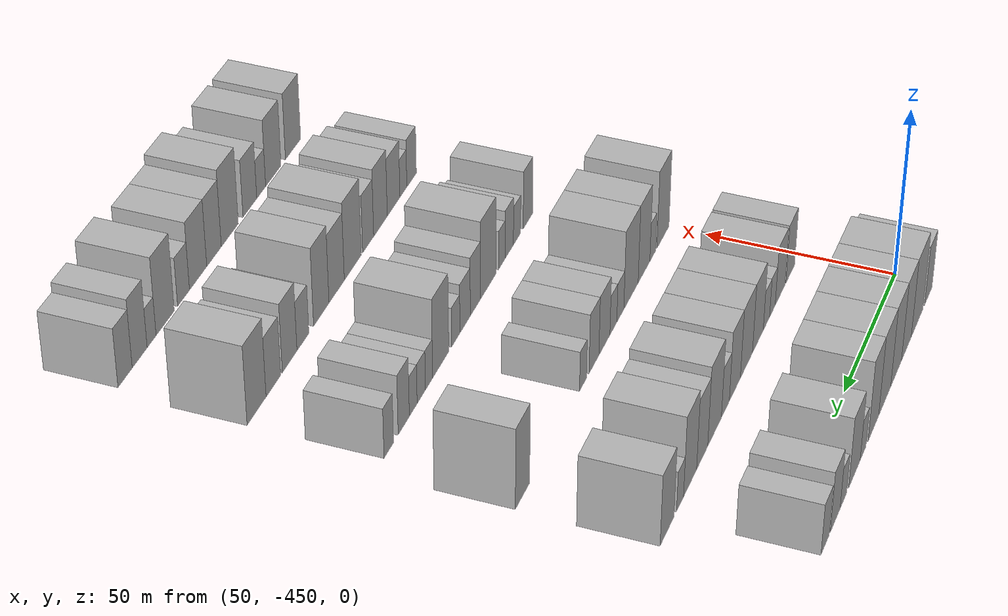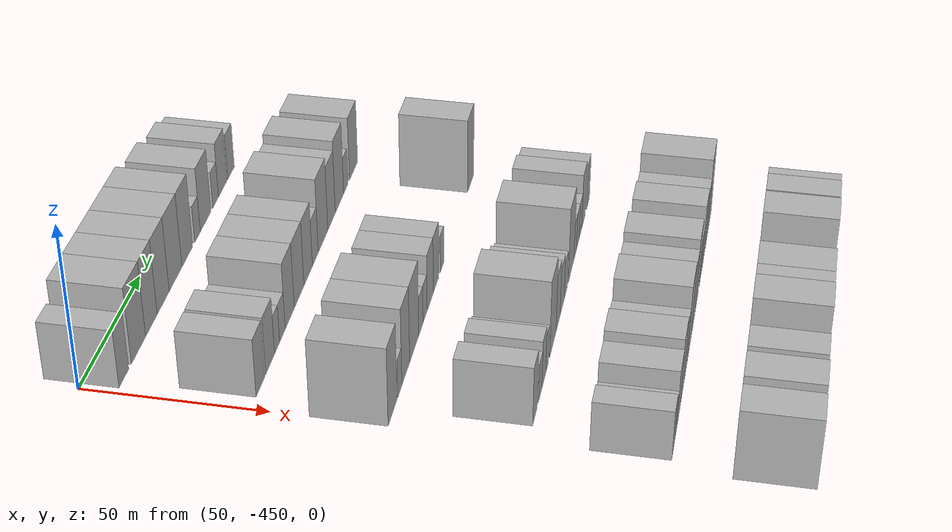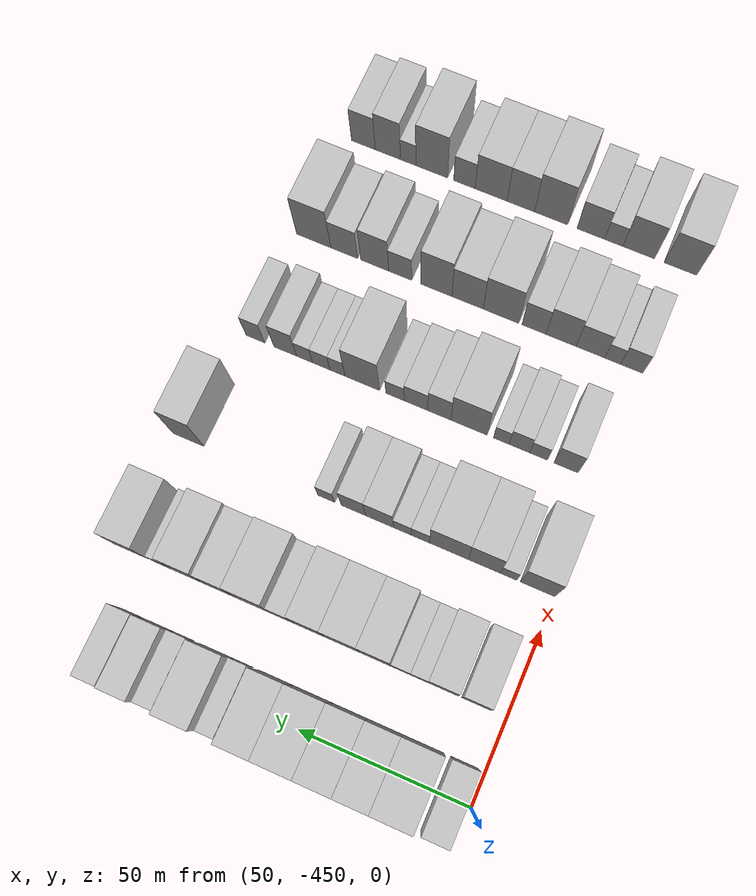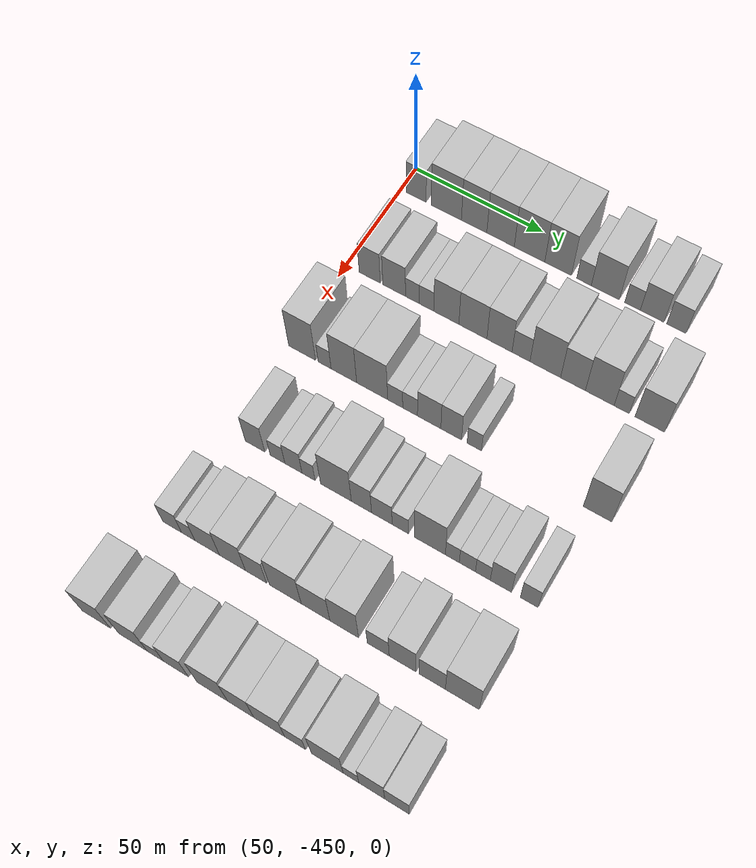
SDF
<sdf version="1.6">
 <world name="default">
  <model name="building_14">
   <static>1</static>
   <pose>50.0000 -443.8816 0 0.000000 0.000000 0.000000</pose>
   <link name="link">
    <pose>0 0 9.00 0 0 0</pose>
    <collision name="collision"><geometry><box><size>20.0000 7.8387 18.0000</size></box></geometry></collision>
    <visual name="visual">
     <cast_shadows>0</cast_shadows>
     <geometry><box><size>20.0000 7.8387 18.0000</size></box></geometry>
     <material>
      <script>
       <uri>model://HANNAS_wall/materials/scripts</uri>
       <uri>model://HANNAS_wall/materials/textures</uri>
       <name>vrc/HANNAS_wall</name>
      </script>
     </material>
    </visual>
   </link>
  </model>
  <model name="building_15">
   <static>1</static>
   <pose>50.0000 -432.0158 0 0.000000 0.000000 0.000000</pose>
   <link name="link">
    <pose>0 0 12.00 0 0 0</pose>
    <collision name="collision"><geometry><box><size>20.0000 11.8929 24.0000</size></box></geometry></collision>
    <visual name="visual">
     <cast_shadows>0</cast_shadows>
     <geometry><box><size>20.0000 11.8929 24.0000</size></box></geometry>
     <material>
      <script>
       <uri>model://HANNAS_wall/materials/scripts</uri>
       <uri>model://HANNAS_wall/materials/textures</uri>
       <name>vrc/HANNAS_wall</name>
      </script>
     </material>
    </visual>
   </link>
  </model>
  <model name="building_16">
   <static>1</static>
   <pose>50.0000 -421.1257 0 0.000000 0.000000 0.000000</pose>
   <link name="link">
    <pose>0 0 12.00 0 0 0</pose>
    <collision name="collision"><geometry><box><size>20.0000 9.8872 24.0000</size></box></geometry></collision>
    <visual name="visual">
     <cast_shadows>0</cast_shadows>
     <geometry><box><size>20.0000 9.8872 24.0000</size></box></geometry>
     <material>
      <script>
       <uri>model://HANNAS_wall/materials/scripts</uri>
       <uri>model://HANNAS_wall/materials/textures</uri>
       <name>vrc/HANNAS_wall</name>
      </script>
     </material>
    </visual>
   </link>
  </model>
  <model name="building_17">
   <static>1</static>
   <pose>50.0000 -410.8845 0 0.000000 0.000000 0.000000</pose>
   <link name="link">
    <pose>0 0 12.00 0 0 0</pose>
    <collision name="collision"><geometry><box><size>20.0000 10.5951 24.0000</size></box></geometry></collision>
    <visual name="visual">
     <cast_shadows>0</cast_shadows>
     <geometry><box><size>20.0000 10.5951 24.0000</size></box></geometry>
     <material>
      <script>
       <uri>model://HANNAS_wall/materials/scripts</uri>
       <uri>model://HANNAS_wall/materials/textures</uri>
       <name>vrc/HANNAS_wall</name>
      </script>
     </material>
    </visual>
   </link>
  </model>
  <model name="building_18">
   <static>1</static>
   <pose>50.0000 -399.7800 0 0.000000 0.000000 0.000000</pose>
   <link name="link">
    <pose>0 0 12.00 0 0 0</pose>
    <collision name="collision"><geometry><box><size>20.0000 11.6139 24.0000</size></box></geometry></collision>
    <visual name="visual">
     <cast_shadows>0</cast_shadows>
     <geometry><box><size>20.0000 11.6139 24.0000</size></box></geometry>
     <material>
      <script>
       <uri>model://HANNAS_wall/materials/scripts</uri>
       <uri>model://HANNAS_wall/materials/textures</uri>
       <name>vrc/HANNAS_wall</name>
      </script>
     </material>
    </visual>
   </link>
  </model>
  <model name="building_19">
   <static>1</static>
   <pose>50.0000 -388.9521 0 0.000000 0.000000 0.000000</pose>
   <link name="link">
    <pose>0 0 12.00 0 0 0</pose>
    <collision name="collision"><geometry><box><size>20.0000 10.0421 24.0000</size></box></geometry></collision>
    <visual name="visual">
     <cast_shadows>0</cast_shadows>
     <geometry><box><size>20.0000 10.0421 24.0000</size></box></geometry>
     <material>
      <script>
       <uri>model://HANNAS_wall/materials/scripts</uri>
       <uri>model://HANNAS_wall/materials/textures</uri>
       <name>vrc/HANNAS_wall</name>
      </script>
     </material>
    </visual>
   </link>
  </model>
  <model name="building_20">
   <static>1</static>
   <pose>50.0000 -379.2220 0 0.000000 0.000000 0.000000</pose>
   <link name="link">
    <pose>0 0 6.00 0 0 0</pose>
    <collision name="collision"><geometry><box><size>20.0000 5.4180 12.0000</size></box></geometry></collision>
    <visual name="visual">
     <cast_shadows>0</cast_shadows>
     <geometry><box><size>20.0000 5.4180 12.0000</size></box></geometry>
     <material>
      <script>
       <uri>model://HANNAS_wall/materials/scripts</uri>
       <uri>model://HANNAS_wall/materials/textures</uri>
       <name>vrc/HANNAS_wall</name>
      </script>
     </material>
    </visual>
   </link>
  </model>
  <model name="building_21">
   <static>1</static>
   <pose>50.0000 -371.3105 0 0.000000 0.000000 0.000000</pose>
   <link name="link">
    <pose>0 0 10.50 0 0 0</pose>
    <collision name="collision"><geometry><box><size>20.0000 10.4052 21.0000</size></box></geometry></collision>
    <visual name="visual">
     <cast_shadows>0</cast_shadows>
     <geometry><box><size>20.0000 10.4052 21.0000</size></box></geometry>
     <material>
      <script>
       <uri>model://HANNAS_wall/materials/scripts</uri>
       <uri>model://HANNAS_wall/materials/textures</uri>
       <name>vrc/HANNAS_wall</name>
      </script>
     </material>
    </visual>
   </link>
  </model>
  <model name="building_22">
   <static>1</static>
   <pose>50.0000 -361.2589 0 0.000000 0.000000 0.000000</pose>
   <link name="link">
    <pose>0 0 6.00 0 0 0</pose>
    <collision name="collision"><geometry><box><size>20.0000 5.6980 12.0000</size></box></geometry></collision>
    <visual name="visual">
     <cast_shadows>0</cast_shadows>
     <geometry><box><size>20.0000 5.6980 12.0000</size></box></geometry>
     <material>
      <script>
       <uri>model://HANNAS_wall/materials/scripts</uri>
       <uri>model://HANNAS_wall/materials/textures</uri>
       <name>vrc/HANNAS_wall</name>
      </script>
     </material>
    </visual>
   </link>
  </model>
  <model name="building_23">
   <static>1</static>
   <pose>50.0000 -354.0971 0 0.000000 0.000000 0.000000</pose>
   <link name="link">
    <pose>0 0 9.00 0 0 0</pose>
    <collision name="collision"><geometry><box><size>20.0000 8.6257 18.0000</size></box></geometry></collision>
    <visual name="visual">
     <cast_shadows>0</cast_shadows>
     <geometry><box><size>20.0000 8.6257 18.0000</size></box></geometry>
     <material>
      <script>
       <uri>model://HANNAS_wall/materials/scripts</uri>
       <uri>model://HANNAS_wall/materials/textures</uri>
       <name>vrc/HANNAS_wall</name>
      </script>
     </material>
    </visual>
   </link>
  </model>
  <model name="building_24">
   <static>1</static>
   <pose>50.0000 -345.2818 0 0.000000 0.000000 0.000000</pose>
   <link name="link">
    <pose>0 0 7.50 0 0 0</pose>
    <collision name="collision"><geometry><box><size>20.0000 7.0049 15.0000</size></box></geometry></collision>
    <visual name="visual">
     <cast_shadows>0</cast_shadows>
     <geometry><box><size>20.0000 7.0049 15.0000</size></box></geometry>
     <material>
      <script>
       <uri>model://HANNAS_wall/materials/scripts</uri>
       <uri>model://HANNAS_wall/materials/textures</uri>
       <name>vrc/HANNAS_wall</name>
      </script>
     </material>
    </visual>
   </link>
  </model>
  <model name="building_121">
   <static>1</static>
   <pose>85.0000 -440.8820 0 0.000000 0.000000 0.000000</pose>
   <link name="link">
    <pose>0 0 9.00 0 0 0</pose>
    <collision name="collision"><geometry><box><size>20.0000 8.1812 18.0000</size></box></geometry></collision>
    <visual name="visual">
     <cast_shadows>0</cast_shadows>
     <geometry><box><size>20.0000 8.1812 18.0000</size></box></geometry>
     <material>
      <script>
       <uri>model://HANNAS_wall/materials/scripts</uri>
       <uri>model://HANNAS_wall/materials/textures</uri>
       <name>vrc/HANNAS_wall</name>
      </script>
     </material>
    </visual>
   </link>
  </model>
  <model name="building_122">
   <static>1</static>
   <pose>85.0000 -431.4140 0 0.000000 0.000000 0.000000</pose>
   <link name="link">
    <pose>0 0 9.00 0 0 0</pose>
    <collision name="collision"><geometry><box><size>20.0000 8.7547 18.0000</size></box></geometry></collision>
    <visual name="visual">
     <cast_shadows>0</cast_shadows>
     <geometry><box><size>20.0000 8.7547 18.0000</size></box></geometry>
     <material>
      <script>
       <uri>model://HANNAS_wall/materials/scripts</uri>
       <uri>model://HANNAS_wall/materials/textures</uri>
       <name>vrc/HANNAS_wall</name>
      </script>
     </material>
    </visual>
   </link>
  </model>
  <model name="building_123">
   <static>1</static>
   <pose>85.0000 -424.4767 0 0.000000 0.000000 0.000000</pose>
   <link name="link">
    <pose>0 0 6.00 0 0 0</pose>
    <collision name="collision"><geometry><box><size>20.0000 5.1198 12.0000</size></box></geometry></collision>
    <visual name="visual">
     <cast_shadows>0</cast_shadows>
     <geometry><box><size>20.0000 5.1198 12.0000</size></box></geometry>
     <material>
      <script>
       <uri>model://HANNAS_wall/materials/scripts</uri>
       <uri>model://HANNAS_wall/materials/textures</uri>
       <name>vrc/HANNAS_wall</name>
      </script>
     </material>
    </visual>
   </link>
  </model>
  <model name="building_124">
   <static>1</static>
   <pose>85.0000 -419.0931 0 0.000000 0.000000 0.000000</pose>
   <link name="link">
    <pose>0 0 6.00 0 0 0</pose>
    <collision name="collision"><geometry><box><size>20.0000 5.6473 12.0000</size></box></geometry></collision>
    <visual name="visual">
     <cast_shadows>0</cast_shadows>
     <geometry><box><size>20.0000 5.6473 12.0000</size></box></geometry>
     <material>
      <script>
       <uri>model://HANNAS_wall/materials/scripts</uri>
       <uri>model://HANNAS_wall/materials/textures</uri>
       <name>vrc/HANNAS_wall</name>
      </script>
     </material>
    </visual>
   </link>
  </model>
  <model name="building_125">
   <static>1</static>
   <pose>85.0000 -411.5075 0 0.000000 0.000000 0.000000</pose>
   <link name="link">
    <pose>0 0 10.50 0 0 0</pose>
    <collision name="collision"><geometry><box><size>20.0000 9.5239 21.0000</size></box></geometry></collision>
    <visual name="visual">
     <cast_shadows>0</cast_shadows>
     <geometry><box><size>20.0000 9.5239 21.0000</size></box></geometry>
     <material>
      <script>
       <uri>model://HANNAS_wall/materials/scripts</uri>
       <uri>model://HANNAS_wall/materials/textures</uri>
       <name>vrc/HANNAS_wall</name>
      </script>
     </material>
    </visual>
   </link>
  </model>
  <model name="building_126">
   <static>1</static>
   <pose>85.0000 -401.5129 0 0.000000 0.000000 0.000000</pose>
   <link name="link">
    <pose>0 0 10.50 0 0 0</pose>
    <collision name="collision"><geometry><box><size>20.0000 10.4655 21.0000</size></box></geometry></collision>
    <visual name="visual">
     <cast_shadows>0</cast_shadows>
     <geometry><box><size>20.0000 10.4655 21.0000</size></box></geometry>
     <material>
      <script>
       <uri>model://HANNAS_wall/materials/scripts</uri>
       <uri>model://HANNAS_wall/materials/textures</uri>
       <name>vrc/HANNAS_wall</name>
      </script>
     </material>
    </visual>
   </link>
  </model>
  <model name="building_127">
   <static>1</static>
   <pose>85.0000 -391.6108 0 0.000000 0.000000 0.000000</pose>
   <link name="link">
    <pose>0 0 10.50 0 0 0</pose>
    <collision name="collision"><geometry><box><size>20.0000 9.3387 21.0000</size></box></geometry></collision>
    <visual name="visual">
     <cast_shadows>0</cast_shadows>
     <geometry><box><size>20.0000 9.3387 21.0000</size></box></geometry>
     <material>
      <script>
       <uri>model://HANNAS_wall/materials/scripts</uri>
       <uri>model://HANNAS_wall/materials/textures</uri>
       <name>vrc/HANNAS_wall</name>
      </script>
     </material>
    </visual>
   </link>
  </model>
  <model name="building_128">
   <static>1</static>
   <pose>85.0000 -383.6403 0 0.000000 0.000000 0.000000</pose>
   <link name="link">
    <pose>0 0 7.50 0 0 0</pose>
    <collision name="collision"><geometry><box><size>20.0000 6.6023 15.0000</size></box></geometry></collision>
    <visual name="visual">
     <cast_shadows>0</cast_shadows>
     <geometry><box><size>20.0000 6.6023 15.0000</size></box></geometry>
     <material>
      <script>
       <uri>model://HANNAS_wall/materials/scripts</uri>
       <uri>model://HANNAS_wall/materials/textures</uri>
       <name>vrc/HANNAS_wall</name>
      </script>
     </material>
    </visual>
   </link>
  </model>
  <model name="building_129">
   <static>1</static>
   <pose>85.0000 -374.7606 0 0.000000 0.000000 0.000000</pose>
   <link name="link">
    <pose>0 0 12.00 0 0 0</pose>
    <collision name="collision"><geometry><box><size>20.0000 11.1570 24.0000</size></box></geometry></collision>
    <visual name="visual">
     <cast_shadows>0</cast_shadows>
     <geometry><box><size>20.0000 11.1570 24.0000</size></box></geometry>
     <material>
      <script>
       <uri>model://HANNAS_wall/materials/scripts</uri>
       <uri>model://HANNAS_wall/materials/textures</uri>
       <name>vrc/HANNAS_wall</name>
      </script>
     </material>
    </visual>
   </link>
  </model>
  <model name="building_130">
   <static>1</static>
   <pose>85.0000 -364.7119 0 0.000000 0.000000 0.000000</pose>
   <link name="link">
    <pose>0 0 10.50 0 0 0</pose>
    <collision name="collision"><geometry><box><size>20.0000 8.9405 21.0000</size></box></geometry></collision>
    <visual name="visual">
     <cast_shadows>0</cast_shadows>
     <geometry><box><size>20.0000 8.9405 21.0000</size></box></geometry>
     <material>
      <script>
       <uri>model://HANNAS_wall/materials/scripts</uri>
       <uri>model://HANNAS_wall/materials/textures</uri>
       <name>vrc/HANNAS_wall</name>
      </script>
     </material>
    </visual>
   </link>
  </model>
  <model name="building_131">
   <static>1</static>
   <pose>85.0000 -355.1148 0 0.000000 0.000000 0.000000</pose>
   <link name="link">
    <pose>0 0 12.00 0 0 0</pose>
    <collision name="collision"><geometry><box><size>20.0000 10.2537 24.0000</size></box></geometry></collision>
    <visual name="visual">
     <cast_shadows>0</cast_shadows>
     <geometry><box><size>20.0000 10.2537 24.0000</size></box></geometry>
     <material>
      <script>
       <uri>model://HANNAS_wall/materials/scripts</uri>
       <uri>model://HANNAS_wall/materials/textures</uri>
       <name>vrc/HANNAS_wall</name>
      </script>
     </material>
    </visual>
   </link>
  </model>
  <model name="building_132">
   <static>1</static>
   <pose>85.0000 -347.2922 0 0.000000 0.000000 0.000000</pose>
   <link name="link">
    <pose>0 0 6.00 0 0 0</pose>
    <collision name="collision"><geometry><box><size>20.0000 5.3915 12.0000</size></box></geometry></collision>
    <visual name="visual">
     <cast_shadows>0</cast_shadows>
     <geometry><box><size>20.0000 5.3915 12.0000</size></box></geometry>
     <material>
      <script>
       <uri>model://HANNAS_wall/materials/scripts</uri>
       <uri>model://HANNAS_wall/materials/textures</uri>
       <name>vrc/HANNAS_wall</name>
      </script>
     </material>
    </visual>
   </link>
  </model>
  <model name="building_133">
   <static>1</static>
   <pose>85.0000 -337.3901 0 0.000000 0.000000 0.000000</pose>
   <link name="link">
    <pose>0 0 10.50 0 0 0</pose>
    <collision name="collision"><geometry><box><size>20.0000 10.4127 21.0000</size></box></geometry></collision>
    <visual name="visual">
     <cast_shadows>0</cast_shadows>
     <geometry><box><size>20.0000 10.4127 21.0000</size></box></geometry>
     <material>
      <script>
       <uri>model://HANNAS_wall/materials/scripts</uri>
       <uri>model://HANNAS_wall/materials/textures</uri>
       <name>vrc/HANNAS_wall</name>
      </script>
     </material>
    </visual>
   </link>
  </model>
  <model name="building_248">
   <static>1</static>
   <pose>120.0000 -444.8070 0 0.000000 0.000000 0.000000</pose>
   <link name="link">
    <pose>0 0 12.00 0 0 0</pose>
    <collision name="collision"><geometry><box><size>20.0000 10.2782 24.0000</size></box></geometry></collision>
    <visual name="visual">
     <cast_shadows>0</cast_shadows>
     <geometry><box><size>20.0000 10.2782 24.0000</size></box></geometry>
     <material>
      <script>
       <uri>model://HANNAS_wall/materials/scripts</uri>
       <uri>model://HANNAS_wall/materials/textures</uri>
       <name>vrc/HANNAS_wall</name>
      </script>
     </material>
    </visual>
   </link>
  </model>
  <model name="building_249">
   <static>1</static>
   <pose>120.0000 -436.2134 0 0.000000 0.000000 0.000000</pose>
   <link name="link">
    <pose>0 0 6.00 0 0 0</pose>
    <collision name="collision"><geometry><box><size>20.0000 4.9089 12.0000</size></box></geometry></collision>
    <visual name="visual">
     <cast_shadows>0</cast_shadows>
     <geometry><box><size>20.0000 4.9089 12.0000</size></box></geometry>
     <material>
      <script>
       <uri>model://HANNAS_wall/materials/scripts</uri>
       <uri>model://HANNAS_wall/materials/textures</uri>
       <name>vrc/HANNAS_wall</name>
      </script>
     </material>
    </visual>
   </link>
  </model>
  <model name="building_250">
   <static>1</static>
   <pose>120.0000 -428.9324 0 0.000000 0.000000 0.000000</pose>
   <link name="link">
    <pose>0 0 12.00 0 0 0</pose>
    <collision name="collision"><geometry><box><size>20.0000 9.6531 24.0000</size></box></geometry></collision>
    <visual name="visual">
     <cast_shadows>0</cast_shadows>
     <geometry><box><size>20.0000 9.6531 24.0000</size></box></geometry>
     <material>
      <script>
       <uri>model://HANNAS_wall/materials/scripts</uri>
       <uri>model://HANNAS_wall/materials/textures</uri>
       <name>vrc/HANNAS_wall</name>
      </script>
     </material>
    </visual>
   </link>
  </model>
  <model name="building_251">
   <static>1</static>
   <pose>120.0000 -418.3189 0 0.000000 0.000000 0.000000</pose>
   <link name="link">
    <pose>0 0 12.00 0 0 0</pose>
    <collision name="collision"><geometry><box><size>20.0000 11.5739 24.0000</size></box></geometry></collision>
    <visual name="visual">
     <cast_shadows>0</cast_shadows>
     <geometry><box><size>20.0000 11.5739 24.0000</size></box></geometry>
     <material>
      <script>
       <uri>model://HANNAS_wall/materials/scripts</uri>
       <uri>model://HANNAS_wall/materials/textures</uri>
       <name>vrc/HANNAS_wall</name>
      </script>
     </material>
    </visual>
   </link>
  </model>
  <model name="building_252">
   <static>1</static>
   <pose>120.0000 -409.7413 0 0.000000 0.000000 0.000000</pose>
   <link name="link">
    <pose>0 0 6.00 0 0 0</pose>
    <collision name="collision"><geometry><box><size>20.0000 5.5812 12.0000</size></box></geometry></collision>
    <visual name="visual">
     <cast_shadows>0</cast_shadows>
     <geometry><box><size>20.0000 5.5812 12.0000</size></box></geometry>
     <material>
      <script>
       <uri>model://HANNAS_wall/materials/scripts</uri>
       <uri>model://HANNAS_wall/materials/textures</uri>
       <name>vrc/HANNAS_wall</name>
      </script>
     </material>
    </visual>
   </link>
  </model>
  <model name="building_253">
   <static>1</static>
   <pose>120.0000 -404.2414 0 0.000000 0.000000 0.000000</pose>
   <link name="link">
    <pose>0 0 6.00 0 0 0</pose>
    <collision name="collision"><geometry><box><size>20.0000 5.4187 12.0000</size></box></geometry></collision>
    <visual name="visual">
     <cast_shadows>0</cast_shadows>
     <geometry><box><size>20.0000 5.4187 12.0000</size></box></geometry>
     <material>
      <script>
       <uri>model://HANNAS_wall/materials/scripts</uri>
       <uri>model://HANNAS_wall/materials/textures</uri>
       <name>vrc/HANNAS_wall</name>
      </script>
     </material>
    </visual>
   </link>
  </model>
  <model name="building_254">
   <static>1</static>
   <pose>120.0000 -397.2531 0 0.000000 0.000000 0.000000</pose>
   <link name="link">
    <pose>0 0 9.00 0 0 0</pose>
    <collision name="collision"><geometry><box><size>20.0000 8.5578 18.0000</size></box></geometry></collision>
    <visual name="visual">
     <cast_shadows>0</cast_shadows>
     <geometry><box><size>20.0000 8.5578 18.0000</size></box></geometry>
     <material>
      <script>
       <uri>model://HANNAS_wall/materials/scripts</uri>
       <uri>model://HANNAS_wall/materials/textures</uri>
       <name>vrc/HANNAS_wall</name>
      </script>
     </material>
    </visual>
   </link>
  </model>
  <model name="building_255">
   <static>1</static>
   <pose>120.0000 -389.2310 0 0.000000 0.000000 0.000000</pose>
   <link name="link">
    <pose>0 0 9.00 0 0 0</pose>
    <collision name="collision"><geometry><box><size>20.0000 7.4864 18.0000</size></box></geometry></collision>
    <visual name="visual">
     <cast_shadows>0</cast_shadows>
     <geometry><box><size>20.0000 7.4864 18.0000</size></box></geometry>
     <material>
      <script>
       <uri>model://HANNAS_wall/materials/scripts</uri>
       <uri>model://HANNAS_wall/materials/textures</uri>
       <name>vrc/HANNAS_wall</name>
      </script>
     </material>
    </visual>
   </link>
  </model>
  <model name="building_256">
   <static>1</static>
   <pose>120.0000 -380.8950 0 0.000000 0.000000 0.000000</pose>
   <link name="link">
    <pose>0 0 6.00 0 0 0</pose>
    <collision name="collision"><geometry><box><size>20.0000 5.1856 12.0000</size></box></geometry></collision>
    <visual name="visual">
     <cast_shadows>0</cast_shadows>
     <geometry><box><size>20.0000 5.1856 12.0000</size></box></geometry>
     <material>
      <script>
       <uri>model://HANNAS_wall/materials/scripts</uri>
       <uri>model://HANNAS_wall/materials/textures</uri>
       <name>vrc/HANNAS_wall</name>
      </script>
     </material>
    </visual>
   </link>
  </model>
  <model name="building_257">
   <static>1</static>
   <pose>120.0000 -337.5895 0 0.000000 0.000000 0.000000</pose>
   <link name="link">
    <pose>0 0 12.00 0 0 0</pose>
    <collision name="collision"><geometry><box><size>20.0000 9.8085 24.0000</size></box></geometry></collision>
    <visual name="visual">
     <cast_shadows>0</cast_shadows>
     <geometry><box><size>20.0000 9.8085 24.0000</size></box></geometry>
     <material>
      <script>
       <uri>model://HANNAS_wall/materials/scripts</uri>
       <uri>model://HANNAS_wall/materials/textures</uri>
       <name>vrc/HANNAS_wall</name>
      </script>
     </material>
    </visual>
   </link>
  </model>
  <model name="building_365">
   <static>1</static>
   <pose>155.0000 -439.5896 0 0.000000 0.000000 0.000000</pose>
   <link name="link">
    <pose>0 0 9.00 0 0 0</pose>
    <collision name="collision"><geometry><box><size>20.0000 7.3186 18.0000</size></box></geometry></collision>
    <visual name="visual">
     <cast_shadows>0</cast_shadows>
     <geometry><box><size>20.0000 7.3186 18.0000</size></box></geometry>
     <material>
      <script>
       <uri>model://HANNAS_wall/materials/scripts</uri>
       <uri>model://HANNAS_wall/materials/textures</uri>
       <name>vrc/HANNAS_wall</name>
      </script>
     </material>
    </visual>
   </link>
  </model>
  <model name="building_366">
   <static>1</static>
   <pose>155.0000 -431.2160 0 0.000000 0.000000 0.000000</pose>
   <link name="link">
    <pose>0 0 6.00 0 0 0</pose>
    <collision name="collision"><geometry><box><size>20.0000 5.4286 12.0000</size></box></geometry></collision>
    <visual name="visual">
     <cast_shadows>0</cast_shadows>
     <geometry><box><size>20.0000 5.4286 12.0000</size></box></geometry>
     <material>
      <script>
       <uri>model://HANNAS_wall/materials/scripts</uri>
       <uri>model://HANNAS_wall/materials/textures</uri>
       <name>vrc/HANNAS_wall</name>
      </script>
     </material>
    </visual>
   </link>
  </model>
  <model name="building_367">
   <static>1</static>
   <pose>155.0000 -425.3241 0 0.000000 0.000000 0.000000</pose>
   <link name="link">
    <pose>0 0 7.50 0 0 0</pose>
    <collision name="collision"><geometry><box><size>20.0000 6.3553 15.0000</size></box></geometry></collision>
    <visual name="visual">
     <cast_shadows>0</cast_shadows>
     <geometry><box><size>20.0000 6.3553 15.0000</size></box></geometry>
     <material>
      <script>
       <uri>model://HANNAS_wall/materials/scripts</uri>
       <uri>model://HANNAS_wall/materials/textures</uri>
       <name>vrc/HANNAS_wall</name>
      </script>
     </material>
    </visual>
   </link>
  </model>
  <model name="building_368">
   <static>1</static>
   <pose>155.0000 -419.7439 0 0.000000 0.000000 0.000000</pose>
   <link name="link">
    <pose>0 0 6.00 0 0 0</pose>
    <collision name="collision"><geometry><box><size>20.0000 4.8049 12.0000</size></box></geometry></collision>
    <visual name="visual">
     <cast_shadows>0</cast_shadows>
     <geometry><box><size>20.0000 4.8049 12.0000</size></box></geometry>
     <material>
      <script>
       <uri>model://HANNAS_wall/materials/scripts</uri>
       <uri>model://HANNAS_wall/materials/textures</uri>
       <name>vrc/HANNAS_wall</name>
      </script>
     </material>
    </visual>
   </link>
  </model>
  <model name="building_369">
   <static>1</static>
   <pose>155.0000 -409.7506 0 0.000000 0.000000 0.000000</pose>
   <link name="link">
    <pose>0 0 12.00 0 0 0</pose>
    <collision name="collision"><geometry><box><size>20.0000 11.1818 24.0000</size></box></geometry></collision>
    <visual name="visual">
     <cast_shadows>0</cast_shadows>
     <geometry><box><size>20.0000 11.1818 24.0000</size></box></geometry>
     <material>
      <script>
       <uri>model://HANNAS_wall/materials/scripts</uri>
       <uri>model://HANNAS_wall/materials/textures</uri>
       <name>vrc/HANNAS_wall</name>
      </script>
     </material>
    </visual>
   </link>
  </model>
  <model name="building_370">
   <static>1</static>
   <pose>155.0000 -400.5273 0 0.000000 0.000000 0.000000</pose>
   <link name="link">
    <pose>0 0 9.00 0 0 0</pose>
    <collision name="collision"><geometry><box><size>20.0000 7.2648 18.0000</size></box></geometry></collision>
    <visual name="visual">
     <cast_shadows>0</cast_shadows>
     <geometry><box><size>20.0000 7.2648 18.0000</size></box></geometry>
     <material>
      <script>
       <uri>model://HANNAS_wall/materials/scripts</uri>
       <uri>model://HANNAS_wall/materials/textures</uri>
       <name>vrc/HANNAS_wall</name>
      </script>
     </material>
    </visual>
   </link>
  </model>
  <model name="building_371">
   <static>1</static>
   <pose>155.0000 -393.2223 0 0.000000 0.000000 0.000000</pose>
   <link name="link">
    <pose>0 0 7.50 0 0 0</pose>
    <collision name="collision"><geometry><box><size>20.0000 7.3451 15.0000</size></box></geometry></collision>
    <visual name="visual">
     <cast_shadows>0</cast_shadows>
     <geometry><box><size>20.0000 7.3451 15.0000</size></box></geometry>
     <material>
      <script>
       <uri>model://HANNAS_wall/materials/scripts</uri>
       <uri>model://HANNAS_wall/materials/textures</uri>
       <name>vrc/HANNAS_wall</name>
      </script>
     </material>
    </visual>
   </link>
  </model>
  <model name="building_372">
   <static>1</static>
   <pose>155.0000 -386.6559 0 0.000000 0.000000 0.000000</pose>
   <link name="link">
    <pose>0 0 6.00 0 0 0</pose>
    <collision name="collision"><geometry><box><size>20.0000 5.7879 12.0000</size></box></geometry></collision>
    <visual name="visual">
     <cast_shadows>0</cast_shadows>
     <geometry><box><size>20.0000 5.7879 12.0000</size></box></geometry>
     <material>
      <script>
       <uri>model://HANNAS_wall/materials/scripts</uri>
       <uri>model://HANNAS_wall/materials/textures</uri>
       <name>vrc/HANNAS_wall</name>
      </script>
     </material>
    </visual>
   </link>
  </model>
  <model name="building_373">
   <static>1</static>
   <pose>155.0000 -376.2909 0 0.000000 0.000000 0.000000</pose>
   <link name="link">
    <pose>0 0 12.00 0 0 0</pose>
    <collision name="collision"><geometry><box><size>20.0000 10.9420 24.0000</size></box></geometry></collision>
    <visual name="visual">
     <cast_shadows>0</cast_shadows>
     <geometry><box><size>20.0000 10.9420 24.0000</size></box></geometry>
     <material>
      <script>
       <uri>model://HANNAS_wall/materials/scripts</uri>
       <uri>model://HANNAS_wall/materials/textures</uri>
       <name>vrc/HANNAS_wall</name>
      </script>
     </material>
    </visual>
   </link>
  </model>
  <model name="building_374">
   <static>1</static>
   <pose>155.0000 -368.4100 0 0.000000 0.000000 0.000000</pose>
   <link name="link">
    <pose>0 0 6.00 0 0 0</pose>
    <collision name="collision"><geometry><box><size>20.0000 4.8200 12.0000</size></box></geometry></collision>
    <visual name="visual">
     <cast_shadows>0</cast_shadows>
     <geometry><box><size>20.0000 4.8200 12.0000</size></box></geometry>
     <material>
      <script>
       <uri>model://HANNAS_wall/materials/scripts</uri>
       <uri>model://HANNAS_wall/materials/textures</uri>
       <name>vrc/HANNAS_wall</name>
      </script>
     </material>
    </visual>
   </link>
  </model>
  <model name="building_375">
   <static>1</static>
   <pose>155.0000 -363.2234 0 0.000000 0.000000 0.000000</pose>
   <link name="link">
    <pose>0 0 6.00 0 0 0</pose>
    <collision name="collision"><geometry><box><size>20.0000 5.5532 12.0000</size></box></geometry></collision>
    <visual name="visual">
     <cast_shadows>0</cast_shadows>
     <geometry><box><size>20.0000 5.5532 12.0000</size></box></geometry>
     <material>
      <script>
       <uri>model://HANNAS_wall/materials/scripts</uri>
       <uri>model://HANNAS_wall/materials/textures</uri>
       <name>vrc/HANNAS_wall</name>
      </script>
     </material>
    </visual>
   </link>
  </model>
  <model name="building_376">
   <static>1</static>
   <pose>155.0000 -357.8937 0 0.000000 0.000000 0.000000</pose>
   <link name="link">
    <pose>0 0 6.00 0 0 0</pose>
    <collision name="collision"><geometry><box><size>20.0000 5.1060 12.0000</size></box></geometry></collision>
    <visual name="visual">
     <cast_shadows>0</cast_shadows>
     <geometry><box><size>20.0000 5.1060 12.0000</size></box></geometry>
     <material>
      <script>
       <uri>model://HANNAS_wall/materials/scripts</uri>
       <uri>model://HANNAS_wall/materials/textures</uri>
       <name>vrc/HANNAS_wall</name>
      </script>
     </material>
    </visual>
   </link>
  </model>
  <model name="building_377">
   <static>1</static>
   <pose>155.0000 -351.7150 0 0.000000 0.000000 0.000000</pose>
   <link name="link">
    <pose>0 0 9.00 0 0 0</pose>
    <collision name="collision"><geometry><box><size>20.0000 7.2515 18.0000</size></box></geometry></collision>
    <visual name="visual">
     <cast_shadows>0</cast_shadows>
     <geometry><box><size>20.0000 7.2515 18.0000</size></box></geometry>
     <material>
      <script>
       <uri>model://HANNAS_wall/materials/scripts</uri>
       <uri>model://HANNAS_wall/materials/textures</uri>
       <name>vrc/HANNAS_wall</name>
      </script>
     </material>
    </visual>
   </link>
  </model>
  <model name="building_378">
   <static>1</static>
   <pose>155.0000 -342.0760 0 0.000000 0.000000 0.000000</pose>
   <link name="link">
    <pose>0 0 7.50 0 0 0</pose>
    <collision name="collision"><geometry><box><size>20.0000 6.0264 15.0000</size></box></geometry></collision>
    <visual name="visual">
     <cast_shadows>0</cast_shadows>
     <geometry><box><size>20.0000 6.0264 15.0000</size></box></geometry>
     <material>
      <script>
       <uri>model://HANNAS_wall/materials/scripts</uri>
       <uri>model://HANNAS_wall/materials/textures</uri>
       <name>vrc/HANNAS_wall</name>
      </script>
     </material>
    </visual>
   </link>
  </model>
  <model name="building_493">
   <static>1</static>
   <pose>190.0000 -446.3738 0 0.000000 0.000000 0.000000</pose>
   <link name="link">
    <pose>0 0 7.50 0 0 0</pose>
    <collision name="collision"><geometry><box><size>20.0000 6.9343 15.0000</size></box></geometry></collision>
    <visual name="visual">
     <cast_shadows>0</cast_shadows>
     <geometry><box><size>20.0000 6.9343 15.0000</size></box></geometry>
     <material>
      <script>
       <uri>model://HANNAS_wall/materials/scripts</uri>
       <uri>model://HANNAS_wall/materials/textures</uri>
       <name>vrc/HANNAS_wall</name>
      </script>
     </material>
    </visual>
   </link>
  </model>
  <model name="building_494">
   <static>1</static>
   <pose>190.0000 -440.4362 0 0.000000 0.000000 0.000000</pose>
   <link name="link">
    <pose>0 0 6.00 0 0 0</pose>
    <collision name="collision"><geometry><box><size>20.0000 4.9410 12.0000</size></box></geometry></collision>
    <visual name="visual">
     <cast_shadows>0</cast_shadows>
     <geometry><box><size>20.0000 4.9410 12.0000</size></box></geometry>
     <material>
      <script>
       <uri>model://HANNAS_wall/materials/scripts</uri>
       <uri>model://HANNAS_wall/materials/textures</uri>
       <name>vrc/HANNAS_wall</name>
      </script>
     </material>
    </visual>
   </link>
  </model>
  <model name="building_495">
   <static>1</static>
   <pose>190.0000 -433.4995 0 0.000000 0.000000 0.000000</pose>
   <link name="link">
    <pose>0 0 9.00 0 0 0</pose>
    <collision name="collision"><geometry><box><size>20.0000 8.9324 18.0000</size></box></geometry></collision>
    <visual name="visual">
     <cast_shadows>0</cast_shadows>
     <geometry><box><size>20.0000 8.9324 18.0000</size></box></geometry>
     <material>
      <script>
       <uri>model://HANNAS_wall/materials/scripts</uri>
       <uri>model://HANNAS_wall/materials/textures</uri>
       <name>vrc/HANNAS_wall</name>
      </script>
     </material>
    </visual>
   </link>
  </model>
  <model name="building_496">
   <static>1</static>
   <pose>190.0000 -424.3102 0 0.000000 0.000000 0.000000</pose>
   <link name="link">
    <pose>0 0 10.50 0 0 0</pose>
    <collision name="collision"><geometry><box><size>20.0000 9.4463 21.0000</size></box></geometry></collision>
    <visual name="visual">
     <cast_shadows>0</cast_shadows>
     <geometry><box><size>20.0000 9.4463 21.0000</size></box></geometry>
     <material>
      <script>
       <uri>model://HANNAS_wall/materials/scripts</uri>
       <uri>model://HANNAS_wall/materials/textures</uri>
       <name>vrc/HANNAS_wall</name>
      </script>
     </material>
    </visual>
   </link>
  </model>
  <model name="building_497">
   <static>1</static>
   <pose>190.0000 -415.7962 0 0.000000 0.000000 0.000000</pose>
   <link name="link">
    <pose>0 0 9.00 0 0 0</pose>
    <collision name="collision"><geometry><box><size>20.0000 7.5816 18.0000</size></box></geometry></collision>
    <visual name="visual">
     <cast_shadows>0</cast_shadows>
     <geometry><box><size>20.0000 7.5816 18.0000</size></box></geometry>
     <material>
      <script>
       <uri>model://HANNAS_wall/materials/scripts</uri>
       <uri>model://HANNAS_wall/materials/textures</uri>
       <name>vrc/HANNAS_wall</name>
      </script>
     </material>
    </visual>
   </link>
  </model>
  <model name="building_498">
   <static>1</static>
   <pose>190.0000 -405.3602 0 0.000000 0.000000 0.000000</pose>
   <link name="link">
    <pose>0 0 12.00 0 0 0</pose>
    <collision name="collision"><geometry><box><size>20.0000 11.2905 24.0000</size></box></geometry></collision>
    <visual name="visual">
     <cast_shadows>0</cast_shadows>
     <geometry><box><size>20.0000 11.2905 24.0000</size></box></geometry>
     <material>
      <script>
       <uri>model://HANNAS_wall/materials/scripts</uri>
       <uri>model://HANNAS_wall/materials/textures</uri>
       <name>vrc/HANNAS_wall</name>
      </script>
     </material>
    </visual>
   </link>
  </model>
  <model name="building_499">
   <static>1</static>
   <pose>190.0000 -394.6890 0 0.000000 0.000000 0.000000</pose>
   <link name="link">
    <pose>0 0 10.50 0 0 0</pose>
    <collision name="collision"><geometry><box><size>20.0000 10.0518 21.0000</size></box></geometry></collision>
    <visual name="visual">
     <cast_shadows>0</cast_shadows>
     <geometry><box><size>20.0000 10.0518 21.0000</size></box></geometry>
     <material>
      <script>
       <uri>model://HANNAS_wall/materials/scripts</uri>
       <uri>model://HANNAS_wall/materials/textures</uri>
       <name>vrc/HANNAS_wall</name>
      </script>
     </material>
    </visual>
   </link>
  </model>
  <model name="building_500">
   <static>1</static>
   <pose>190.0000 -384.7003 0 0.000000 0.000000 0.000000</pose>
   <link name="link">
    <pose>0 0 12.00 0 0 0</pose>
    <collision name="collision"><geometry><box><size>20.0000 9.9257 24.0000</size></box></geometry></collision>
    <visual name="visual">
     <cast_shadows>0</cast_shadows>
     <geometry><box><size>20.0000 9.9257 24.0000</size></box></geometry>
     <material>
      <script>
       <uri>model://HANNAS_wall/materials/scripts</uri>
       <uri>model://HANNAS_wall/materials/textures</uri>
       <name>vrc/HANNAS_wall</name>
      </script>
     </material>
    </visual>
   </link>
  </model>
  <model name="building_501">
   <static>1</static>
   <pose>190.0000 -373.0025 0 0.000000 0.000000 0.000000</pose>
   <link name="link">
    <pose>0 0 7.50 0 0 0</pose>
    <collision name="collision"><geometry><box><size>20.0000 7.4699 15.0000</size></box></geometry></collision>
    <visual name="visual">
     <cast_shadows>0</cast_shadows>
     <geometry><box><size>20.0000 7.4699 15.0000</size></box></geometry>
     <material>
      <script>
       <uri>model://HANNAS_wall/materials/scripts</uri>
       <uri>model://HANNAS_wall/materials/textures</uri>
       <name>vrc/HANNAS_wall</name>
      </script>
     </material>
    </visual>
   </link>
  </model>
  <model name="building_502">
   <static>1</static>
   <pose>190.0000 -364.7286 0 0.000000 0.000000 0.000000</pose>
   <link name="link">
    <pose>0 0 10.50 0 0 0</pose>
    <collision name="collision"><geometry><box><size>20.0000 9.0780 21.0000</size></box></geometry></collision>
    <visual name="visual">
     <cast_shadows>0</cast_shadows>
     <geometry><box><size>20.0000 9.0780 21.0000</size></box></geometry>
     <material>
      <script>
       <uri>model://HANNAS_wall/materials/scripts</uri>
       <uri>model://HANNAS_wall/materials/textures</uri>
       <name>vrc/HANNAS_wall</name>
      </script>
     </material>
    </visual>
   </link>
  </model>
  <model name="building_503">
   <static>1</static>
   <pose>190.0000 -354.7648 0 0.000000 0.000000 0.000000</pose>
   <link name="link">
    <pose>0 0 9.00 0 0 0</pose>
    <collision name="collision"><geometry><box><size>20.0000 8.8495 18.0000</size></box></geometry></collision>
    <visual name="visual">
     <cast_shadows>0</cast_shadows>
     <geometry><box><size>20.0000 8.8495 18.0000</size></box></geometry>
     <material>
      <script>
       <uri>model://HANNAS_wall/materials/scripts</uri>
       <uri>model://HANNAS_wall/materials/textures</uri>
       <name>vrc/HANNAS_wall</name>
      </script>
     </material>
    </visual>
   </link>
  </model>
  <model name="building_504">
   <static>1</static>
   <pose>190.0000 -344.7056 0 0.000000 0.000000 0.000000</pose>
   <link name="link">
    <pose>0 0 12.00 0 0 0</pose>
    <collision name="collision"><geometry><box><size>20.0000 11.2689 24.0000</size></box></geometry></collision>
    <visual name="visual">
     <cast_shadows>0</cast_shadows>
     <geometry><box><size>20.0000 11.2689 24.0000</size></box></geometry>
     <material>
      <script>
       <uri>model://HANNAS_wall/materials/scripts</uri>
       <uri>model://HANNAS_wall/materials/textures</uri>
       <name>vrc/HANNAS_wall</name>
      </script>
     </material>
    </visual>
   </link>
  </model>
  <model name="building_618">
   <static>1</static>
   <pose>225.0000 -448.7974 0 0.000000 0.000000 0.000000</pose>
   <link name="link">
    <pose>0 0 10.50 0 0 0</pose>
    <collision name="collision"><geometry><box><size>20.0000 10.3491 21.0000</size></box></geometry></collision>
    <visual name="visual">
     <cast_shadows>0</cast_shadows>
     <geometry><box><size>20.0000 10.3491 21.0000</size></box></geometry>
     <material>
      <script>
       <uri>model://HANNAS_wall/materials/scripts</uri>
       <uri>model://HANNAS_wall/materials/textures</uri>
       <name>vrc/HANNAS_wall</name>
      </script>
     </material>
    </visual>
   </link>
  </model>
  <model name="building_619">
   <static>1</static>
   <pose>225.0000 -435.5463 0 0.000000 0.000000 0.000000</pose>
   <link name="link">
    <pose>0 0 10.50 0 0 0</pose>
    <collision name="collision"><geometry><box><size>20.0000 10.1531 21.0000</size></box></geometry></collision>
    <visual name="visual">
     <cast_shadows>0</cast_shadows>
     <geometry><box><size>20.0000 10.1531 21.0000</size></box></geometry>
     <material>
      <script>
       <uri>model://HANNAS_wall/materials/scripts</uri>
       <uri>model://HANNAS_wall/materials/textures</uri>
       <name>vrc/HANNAS_wall</name>
      </script>
     </material>
    </visual>
   </link>
  </model>
  <model name="building_620">
   <static>1</static>
   <pose>225.0000 -427.5622 0 0.000000 0.000000 0.000000</pose>
   <link name="link">
    <pose>0 0 6.00 0 0 0</pose>
    <collision name="collision"><geometry><box><size>20.0000 5.8151 12.0000</size></box></geometry></collision>
    <visual name="visual">
     <cast_shadows>0</cast_shadows>
     <geometry><box><size>20.0000 5.8151 12.0000</size></box></geometry>
     <material>
      <script>
       <uri>model://HANNAS_wall/materials/scripts</uri>
       <uri>model://HANNAS_wall/materials/textures</uri>
       <name>vrc/HANNAS_wall</name>
      </script>
     </material>
    </visual>
   </link>
  </model>
  <model name="building_621">
   <static>1</static>
   <pose>225.0000 -420.2112 0 0.000000 0.000000 0.000000</pose>
   <link name="link">
    <pose>0 0 9.00 0 0 0</pose>
    <collision name="collision"><geometry><box><size>20.0000 8.8869 18.0000</size></box></geometry></collision>
    <visual name="visual">
     <cast_shadows>0</cast_shadows>
     <geometry><box><size>20.0000 8.8869 18.0000</size></box></geometry>
     <material>
      <script>
       <uri>model://HANNAS_wall/materials/scripts</uri>
       <uri>model://HANNAS_wall/materials/textures</uri>
       <name>vrc/HANNAS_wall</name>
      </script>
     </material>
    </visual>
   </link>
  </model>
  <model name="building_622">
   <static>1</static>
   <pose>225.0000 -407.4149 0 0.000000 0.000000 0.000000</pose>
   <link name="link">
    <pose>0 0 12.00 0 0 0</pose>
    <collision name="collision"><geometry><box><size>20.0000 10.7058 24.0000</size></box></geometry></collision>
    <visual name="visual">
     <cast_shadows>0</cast_shadows>
     <geometry><box><size>20.0000 10.7058 24.0000</size></box></geometry>
     <material>
      <script>
       <uri>model://HANNAS_wall/materials/scripts</uri>
       <uri>model://HANNAS_wall/materials/textures</uri>
       <name>vrc/HANNAS_wall</name>
      </script>
     </material>
    </visual>
   </link>
  </model>
  <model name="building_623">
   <static>1</static>
   <pose>225.0000 -397.5650 0 0.000000 0.000000 0.000000</pose>
   <link name="link">
    <pose>0 0 10.50 0 0 0</pose>
    <collision name="collision"><geometry><box><size>20.0000 8.9940 21.0000</size></box></geometry></collision>
    <visual name="visual">
     <cast_shadows>0</cast_shadows>
     <geometry><box><size>20.0000 8.9940 21.0000</size></box></geometry>
     <material>
      <script>
       <uri>model://HANNAS_wall/materials/scripts</uri>
       <uri>model://HANNAS_wall/materials/textures</uri>
       <name>vrc/HANNAS_wall</name>
      </script>
     </material>
    </visual>
   </link>
  </model>
  <model name="building_624">
   <static>1</static>
   <pose>225.0000 -387.8324 0 0.000000 0.000000 0.000000</pose>
   <link name="link">
    <pose>0 0 10.50 0 0 0</pose>
    <collision name="collision"><geometry><box><size>20.0000 10.4712 21.0000</size></box></geometry></collision>
    <visual name="visual">
     <cast_shadows>0</cast_shadows>
     <geometry><box><size>20.0000 10.4712 21.0000</size></box></geometry>
     <material>
      <script>
       <uri>model://HANNAS_wall/materials/scripts</uri>
       <uri>model://HANNAS_wall/materials/textures</uri>
       <name>vrc/HANNAS_wall</name>
      </script>
     </material>
    </visual>
   </link>
  </model>
  <model name="building_625">
   <static>1</static>
   <pose>225.0000 -379.0536 0 0.000000 0.000000 0.000000</pose>
   <link name="link">
    <pose>0 0 7.50 0 0 0</pose>
    <collision name="collision"><geometry><box><size>20.0000 7.0863 15.0000</size></box></geometry></collision>
    <visual name="visual">
     <cast_shadows>0</cast_shadows>
     <geometry><box><size>20.0000 7.0863 15.0000</size></box></geometry>
     <material>
      <script>
       <uri>model://HANNAS_wall/materials/scripts</uri>
       <uri>model://HANNAS_wall/materials/textures</uri>
       <name>vrc/HANNAS_wall</name>
      </script>
     </material>
    </visual>
   </link>
  </model>
  <model name="building_626">
   <static>1</static>
   <pose>225.0000 -368.2263 0 0.000000 0.000000 0.000000</pose>
   <link name="link">
    <pose>0 0 12.00 0 0 0</pose>
    <collision name="collision"><geometry><box><size>20.0000 10.5684 24.0000</size></box></geometry></collision>
    <visual name="visual">
     <cast_shadows>0</cast_shadows>
     <geometry><box><size>20.0000 10.5684 24.0000</size></box></geometry>
     <material>
      <script>
       <uri>model://HANNAS_wall/materials/scripts</uri>
       <uri>model://HANNAS_wall/materials/textures</uri>
       <name>vrc/HANNAS_wall</name>
      </script>
     </material>
    </visual>
   </link>
  </model>
  <model name="building_627">
   <static>1</static>
   <pose>225.0000 -360.3695 0 0.000000 0.000000 0.000000</pose>
   <link name="link">
    <pose>0 0 6.00 0 0 0</pose>
    <collision name="collision"><geometry><box><size>20.0000 5.1451 12.0000</size></box></geometry></collision>
    <visual name="visual">
     <cast_shadows>0</cast_shadows>
     <geometry><box><size>20.0000 5.1451 12.0000</size></box></geometry>
     <material>
      <script>
       <uri>model://HANNAS_wall/materials/scripts</uri>
       <uri>model://HANNAS_wall/materials/textures</uri>
       <name>vrc/HANNAS_wall</name>
      </script>
     </material>
    </visual>
   </link>
  </model>
  <model name="building_628">
   <static>1</static>
   <pose>225.0000 -353.5762 0 0.000000 0.000000 0.000000</pose>
   <link name="link">
    <pose>0 0 10.50 0 0 0</pose>
    <collision name="collision"><geometry><box><size>20.0000 8.4416 21.0000</size></box></geometry></collision>
    <visual name="visual">
     <cast_shadows>0</cast_shadows>
     <geometry><box><size>20.0000 8.4416 21.0000</size></box></geometry>
     <material>
      <script>
       <uri>model://HANNAS_wall/materials/scripts</uri>
       <uri>model://HANNAS_wall/materials/textures</uri>
       <name>vrc/HANNAS_wall</name>
      </script>
     </material>
    </visual>
   </link>
  </model>
  <model name="building_629">
   <static>1</static>
   <pose>225.0000 -345.3685 0 0.000000 0.000000 0.000000</pose>
   <link name="link">
    <pose>0 0 9.00 0 0 0</pose>
    <collision name="collision"><geometry><box><size>20.0000 7.9739 18.0000</size></box></geometry></collision>
    <visual name="visual">
     <cast_shadows>0</cast_shadows>
     <geometry><box><size>20.0000 7.9739 18.0000</size></box></geometry>
     <material>
      <script>
       <uri>model://HANNAS_wall/materials/scripts</uri>
       <uri>model://HANNAS_wall/materials/textures</uri>
       <name>vrc/HANNAS_wall</name>
      </script>
     </material>
    </visual>
   </link>
  </model>
 </world>
</sdf>
